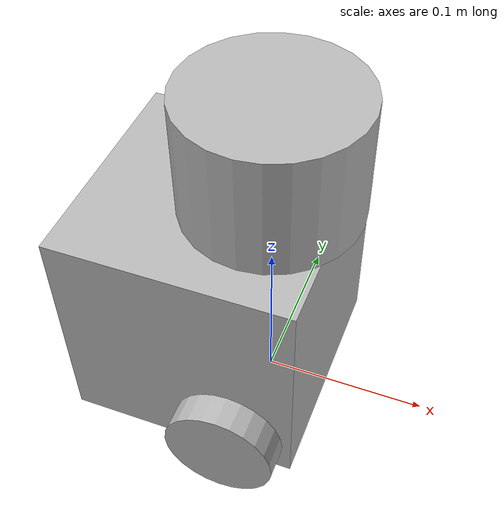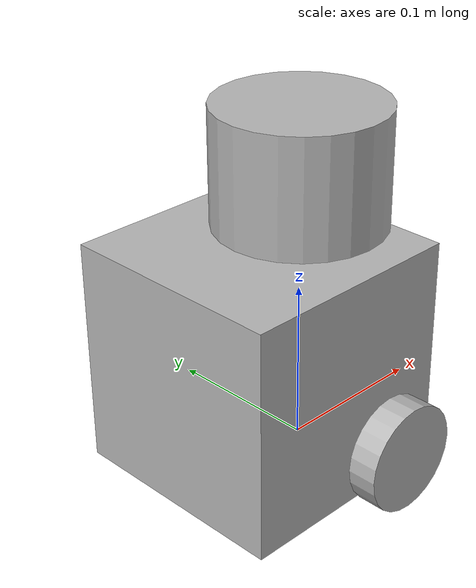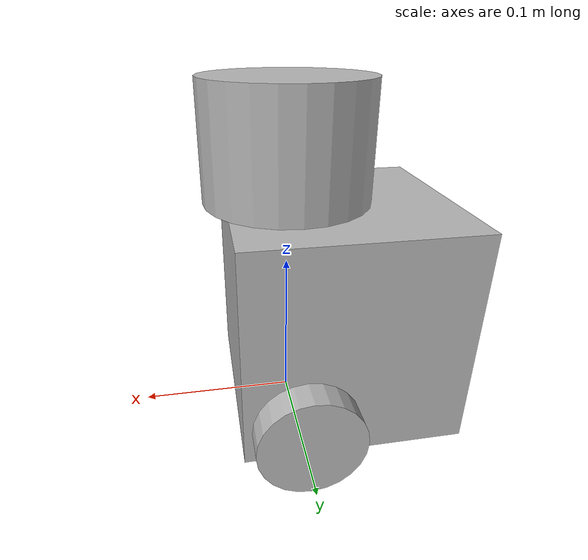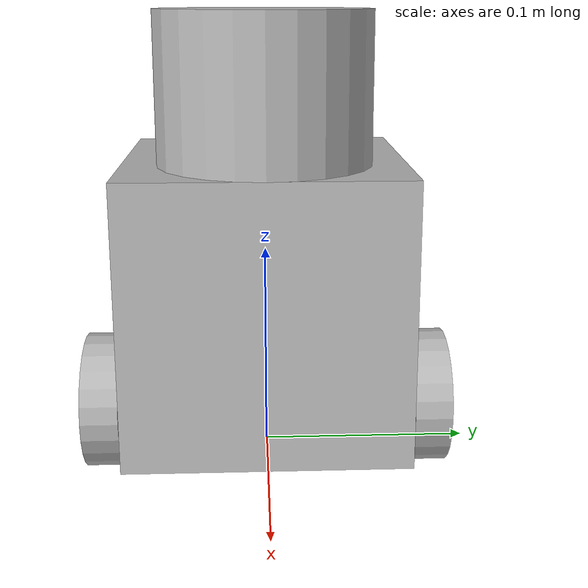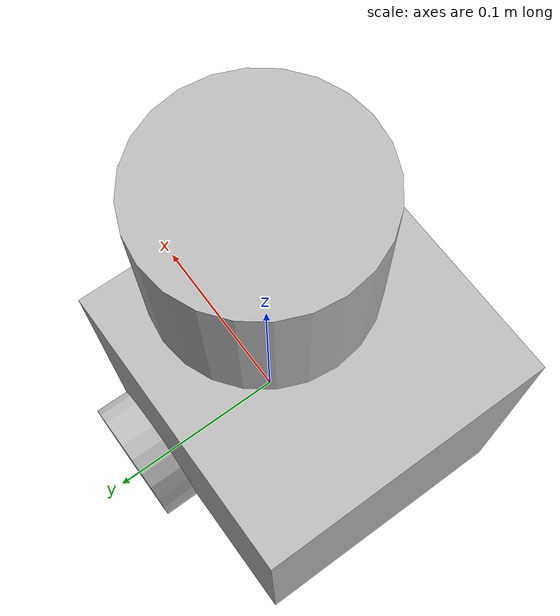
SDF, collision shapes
<?xml version="1.0" ?>
<sdf version="1.5">
  <model name="turtlebot3_burger_velodyne">
    <pose>0.0 0.0 0.0 0.0 0.0 0.0</pose>

    <link name="base_footprint"/>

    <link name="base_link">

      <inertial>
        <pose>-0.032 0 0.070 0 0 0</pose>
        <inertia>
          <ixx>7.2397393e-01</ixx>
          <ixy>4.686399e-10</ixy>
          <ixz>-1.09525703e-08</ixz>
          <iyy>7.2397393e-01</iyy>
          <iyz>2.8582649e-09</iyz>
          <izz>6.53050163e-01</izz>
        </inertia>
        <mass>8.2573504e-01</mass>
      </inertial>

      <collision name="base_collision">
        <pose>-0.032 0 0.070 0 0 0</pose>
        <geometry>
          <box>
            <size>0.140 0.140 0.140</size>
          </box>
        </geometry>
      </collision>

      <visual name="base_visual">
        <pose>-0.032 0 0 0 0 0</pose>
        <geometry>
          <mesh>
            <uri>model://turtlebot3_common/meshes/burger_base.dae</uri>
            <scale>0.001 0.001 0.001</scale>
          </mesh>
        </geometry>
      </visual>
    </link>

    <link name="imu_link">
      <sensor name="imu" type="imu">
        <always_on>true</always_on>
        <update_rate>200</update_rate>
        <imu>
          <angular_velocity>
            <x>
              <noise type="gaussian">
                <mean>0.0</mean>
                <stddev>2e-4</stddev>
              </noise>
            </x>
            <y>
              <noise type="gaussian">
                <mean>0.0</mean>
                <stddev>2e-4</stddev>
              </noise>
            </y>
            <z>
              <noise type="gaussian">
                <mean>0.0</mean>
                <stddev>2e-4</stddev>
              </noise>
            </z>
          </angular_velocity>
          <linear_acceleration>
            <x>
              <noise type="gaussian">
                <mean>0.0</mean>
                <stddev>1.7e-2</stddev>
              </noise>
            </x>
            <y>
              <noise type="gaussian">
                <mean>0.0</mean>
                <stddev>1.7e-2</stddev>
              </noise>
            </y>
            <z>
              <noise type="gaussian">
                <mean>0.0</mean>
                <stddev>1.7e-2</stddev>
              </noise>
            </z>
          </linear_acceleration>
        </imu>
        <plugin name="turtlebot3_imu" filename="libgazebo_ros_imu_sensor.so">
          <ros>
            <remapping>~/out:=imu</remapping>
          </ros>
        </plugin>
      </sensor>
    </link>

    <link name="base_scan">
        <pose frame=''>0 0 0.18 0 0 0</pose>
        <inertial>
          <pose frame=''>0 0 0 0 0 0</pose>
          <mass>0.8</mass>
          <inertia>
            <ixx>3.23643</ixx>
            <ixy>0.0156863</ixy>
            <ixz>0.065702</ixz>
            <iyy>3.35996</iyy>
            <iyz>-0.00821275</iyz>
            <izz>3.32745</izz>
          </inertia>
        </inertial>
        <collision name='base_scan_collision_1'>
          <pose frame=''>0 0 -0.00185 0 0 0</pose>
          <geometry>
            <cylinder>
              <length>0.0717</length>
              <radius>0.0516</radius>
            </cylinder>
          </geometry>
          <surface>
            <contact>
              <ode/>
            </contact>
            <friction>
              <ode/>
              <torsional>
                <ode/>
              </torsional>
            </friction>
            <bounce/>
          </surface>
          <max_contacts>10</max_contacts>
        </collision>
        <visual name='base_scan_visual_1'>
          <pose frame=''>0 0 -0.0377 0 0 0</pose>
          <geometry>
            <mesh>
              <scale>0.5 0.5 0.5</scale>
              <uri>model://velodyne_VLP16/meshes/VLP16_base_1.dae</uri>
            </mesh>
          </geometry>
          <material>
            <script>
              <uri>__default__</uri>
              <name>__default__</name>
            </script>
          </material>
        </visual>
        <visual name='base_footprint_visual_2'>
          <pose frame=''>0 0 -0.0377 0 0 0</pose>
          <geometry>
            <mesh>
              <scale>0.5 0.5 0.5</scale>
              <uri>model://velodyne_VLP16/meshes/VLP16_base_2.dae</uri>
            </mesh>
          </geometry>
          <material>
            <script>
              <uri>__default__</uri>
              <name>__default__</name>
            </script>
          </material>
        </visual>
        <visual name='base_footprint_visual_3'>
          <pose frame=''>0 0 -0.0377 0 0 0</pose>
          <geometry>
            <mesh>
              <scale>0.5 0.5 0.5</scale>
              <uri>model://velodyne_VLP16/meshes/VLP16_scan.dae</uri>
            </mesh>
          </geometry>
          <material>
            <script>
              <uri>__default__</uri>
              <name>__default__</name>
            </script>
          </material>
        </visual>
        <sensor name='velodyne-VLP16' type='gpu_ray'>
          <visualize>0</visualize>
          <update_rate>10</update_rate>
          <ray>
            <scan>
              <horizontal>
                <samples>1875</samples>
                <resolution>1</resolution>
                <min_angle>-3.14159</min_angle>
                <max_angle>3.14159</max_angle>
              </horizontal>
              <vertical>

                <samples>16</samples>
                <resolution>1</resolution>
                <min_angle>-0.261799</min_angle>
                <max_angle>0.261799</max_angle>

              </vertical>
            </scan>
            <range>
              <min>0.055</min>
              <max>70</max>
              <resolution>0.02</resolution>
            </range>
            <noise>
              <type>gaussian</type>
              <mean>0</mean>
              <stddev>0</stddev>
            </noise>
          </ray>
          <plugin name='gazebo_ros_laser_controller' filename='libgazebo_ros_velodyne_laser.so'>
            <ros>
              <remapping>~/out:=velodyne_points</remapping>
            </ros>
            <topicName>velodyne_points</topicName>
            <frameName>base_scan</frameName>
            <min_range>0.9</min_range>
            <max_range>130.0</max_range>
            <gaussianNoise>0.008</gaussianNoise>
            <robotNamespace>/</robotNamespace>
          </plugin>
          <pose frame=''>0 0 -0.02 0 0 0</pose>

          <plugin name="gazebo_2d_laserscan" filename="libgazebo_ros_ray_sensor.so">
            <ros>
              <remapping>~/out:=scan</remapping>
            </ros>
            <output_type>sensor_msgs/LaserScan</output_type>
            <frame_name>base_scan</frame_name>
          </plugin>

        </sensor>
        <gravity>0</gravity>
        <self_collide>0</self_collide>
        <kinematic>0</kinematic>
      </link>

    <link name="wheel_left_link">

      <inertial>
        <pose>0 0.08 0.023 -1.57 0 0</pose>
        <inertia>
          <ixx>1.8158194e-03</ixx>
          <ixy>-9.3392e-12</ixy>
          <ixz>1.04909e-11</ixz>
          <iyy>3.2922126e-03</iyy>
          <iyz>5.75694e-11</iyz>
          <izz>1.8158194e-03</izz>
        </inertia>
        <mass>2.8498940e-02</mass>
      </inertial>

      <collision name="wheel_left_collision">
        <pose>0 0.08 0.023 -1.57 0 0</pose>
        <geometry>
          <cylinder>
            <radius>0.033</radius>
            <length>0.018</length>
          </cylinder>
        </geometry>
        <surface>
          <!-- This friction pamareter don't contain reliable data!! -->
          <friction>
            <ode>
              <mu>100000.0</mu>
              <mu2>100000.0</mu2>
              <fdir1>0 0 0</fdir1>
              <slip1>0.0</slip1>
              <slip2>0.0</slip2>
            </ode>
          </friction>
          <contact>
            <ode>
              <soft_cfm>0</soft_cfm>
              <soft_erp>0.2</soft_erp>
              <kp>1e+5</kp>
              <kd>1</kd>
              <max_vel>0.01</max_vel>
              <min_depth>0.001</min_depth>
            </ode>
          </contact>
        </surface>
      </collision>

      <visual name="wheel_left_visual">
        <pose>0 0.08 0.023 0 0 0</pose>
        <geometry>
          <mesh>
            <uri>model://turtlebot3_common/meshes/tire.dae</uri>
            <scale>0.001 0.001 0.001</scale>
          </mesh>
        </geometry>
      </visual>
    </link>

    <link name="wheel_right_link">

      <inertial>
        <pose>0.0 -0.08 0.023 -1.57 0 0</pose>
        <inertia>
          <ixx>1.8158194e-03</ixx>
          <ixy>-9.3392e-12</ixy>
          <ixz>1.04909e-11</ixz>
          <iyy>3.2922126e-03</iyy>
          <iyz>5.75694e-11</iyz>
          <izz>1.8158194e-03</izz>
        </inertia>
        <mass>2.8498940e-02</mass>
      </inertial>

      <collision name="wheel_right_collision">
        <pose>0.0 -0.08 0.023 -1.57 0 0</pose>
        <geometry>
          <cylinder>
            <radius>0.033</radius>
            <length>0.018</length>
          </cylinder>
        </geometry>
        <surface>
          <!-- This friction pamareter don't contain reliable data!! -->
          <friction>
            <ode>
              <mu>100000.0</mu>
              <mu2>100000.0</mu2>
              <fdir1>0 0 0</fdir1>
              <slip1>0.0</slip1>
              <slip2>0.0</slip2>
            </ode>
          </friction>
          <contact>
            <ode>
              <soft_cfm>0</soft_cfm>
              <soft_erp>0.2</soft_erp>
              <kp>1e+5</kp>
              <kd>1</kd>
              <max_vel>0.01</max_vel>
              <min_depth>0.001</min_depth>
            </ode>
          </contact>
        </surface>
      </collision>

      <visual name="wheel_right_visual">
        <pose>0.0 -0.08 0.023 0 0 0</pose>
        <geometry>
          <mesh>
            <uri>model://turtlebot3_common/meshes/tire.dae</uri>
            <scale>0.001 0.001 0.001</scale>
          </mesh>
        </geometry>
      </visual>
    </link>

    <link name='caster_back_link'>
      <pose>-0.081 0 -0.004 -1.57 0 0</pose>
      <inertial>
        <mass>0.005</mass>
        <inertia>
          <ixx>0.001</ixx>
          <ixy>0.000</ixy>
          <ixz>0.000</ixz>
          <iyy>0.001</iyy>
          <iyz>0.000</iyz>
          <izz>0.001</izz>
        </inertia>
      </inertial>
      <collision name='collision'>
        <geometry>
          <sphere>
            <radius>0.005000</radius>
          </sphere>
        </geometry>
        <surface>
          <contact>
            <ode>
              <soft_cfm>0</soft_cfm>
              <soft_erp>0.2</soft_erp>
              <kp>1e+5</kp>
              <kd>1</kd>
              <max_vel>0.01</max_vel>
              <min_depth>0.001</min_depth>
            </ode>
          </contact>
        </surface>
      </collision>
    </link>

    <joint name="base_joint" type="fixed">
      <parent>base_footprint</parent>
      <child>base_link</child>
      <pose>0.0 0.0 0.010 0 0 0</pose>
    </joint>

    <joint name="wheel_left_joint" type="revolute">
      <parent>base_link</parent>
      <child>wheel_left_link</child>
      <pose>0.0 0.08 0.023 -1.57 0 0</pose>
      <axis>
        <xyz>0 0 1</xyz>
      </axis>
    </joint>

    <joint name="wheel_right_joint" type="revolute">
      <parent>base_link</parent>
      <child>wheel_right_link</child>
      <pose>0.0 -0.08 0.023 -1.57 0 0</pose>
      <axis>
        <xyz>0 0 1</xyz>
      </axis>
    </joint>

    <joint name='caster_back_joint' type='ball'>
      <parent>base_link</parent>
      <child>caster_back_link</child>
    </joint>

    <joint name="imu_joint" type="fixed">
      <parent>base_link</parent>
      <child>imu_link</child>
      <pose>-0.032 0 0.068 0 0 0</pose>
      <axis>
        <xyz>0 0 1</xyz>
      </axis>
    </joint>

    <joint name="lidar_joint" type="fixed">
      <parent>base_link</parent>
      <child>base_scan</child>
      <pose>-0.032 0 0.171 0 0 0</pose>
      <axis>
        <xyz>0 0 1</xyz>
      </axis>
    </joint>

    <plugin name="turtlebot3_diff_drive" filename="libgazebo_ros_diff_drive.so">

      <ros>
      </ros>

      <update_rate>30</update_rate>

      <!-- wheels -->
      <left_joint>wheel_left_joint</left_joint>
      <right_joint>wheel_right_joint</right_joint>

      <!-- kinematics -->
      <wheel_separation>0.160</wheel_separation>
      <wheel_diameter>0.066</wheel_diameter>

      <!-- limits -->
      <max_wheel_torque>20</max_wheel_torque>
      <max_wheel_acceleration>1.0</max_wheel_acceleration>

      <command_topic>cmd_vel</command_topic>

      <!-- output -->
      <publish_odom>true</publish_odom>
      <publish_odom_tf>true</publish_odom_tf>
      <publish_wheel_tf>false</publish_wheel_tf>

      <odometry_topic>odom</odometry_topic>
      <odometry_frame>odom</odometry_frame>
      <robot_base_frame>base_footprint</robot_base_frame>

    </plugin>

    <plugin name="turtlebot3_joint_state" filename="libgazebo_ros_joint_state_publisher.so">
      <ros>
        <remapping>~/out:=joint_states</remapping>
      </ros>
      <update_rate>30</update_rate>
      <joint_name>wheel_left_joint</joint_name>
      <joint_name>wheel_right_joint</joint_name>
    </plugin>
  </model>
</sdf>
